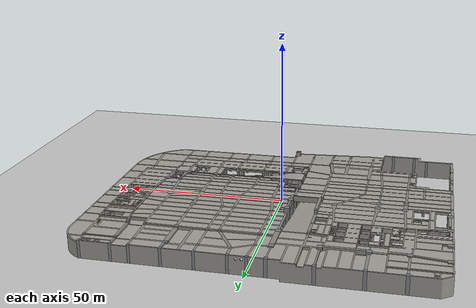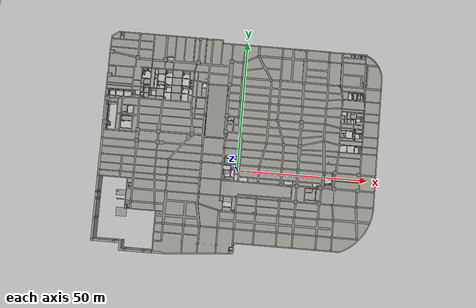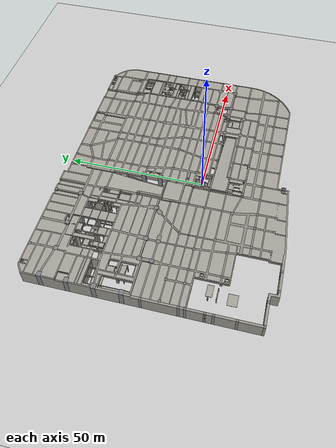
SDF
<?xml version='1.0' encoding='utf-8'?>
<sdf version="1.6">
  <world name="x920_b1_structure">
    <!-- Beam/column/wall/slab meshes extracted from the supplied S_B1 RVT. See meshes/b1_structure/source_report.json. -->
    <physics name="default_physics" type="ode">
      <max_step_size>0.001</max_step_size>
      <real_time_update_rate>1000</real_time_update_rate>
      <real_time_factor>1.0</real_time_factor>
    </physics>
    <gravity>0 0 -9.7946</gravity>
    <scene>
      <ambient>0.55 0.55 0.55 1</ambient>
      <shadows>true</shadows>
    </scene>
    <include>
      <uri>model://sun</uri>
    </include>
    <include>
      <uri>model://ground_plane</uri>
    </include>
    <model name="b1_beam">
      <static>true</static>
      <link name="structure">
        <collision name="beam_collision">
          <geometry>
            <mesh>
              <uri>file://meshes/b1_structure/beam.stl</uri>
              <scale>1 1 1</scale>
            </mesh>
          </geometry>
        </collision>
        <visual name="beam_visual">
          <geometry>
            <mesh>
              <uri>file://meshes/b1_structure/beam.stl</uri>
              <scale>1 1 1</scale>
            </mesh>
          </geometry>
          <material>
            <ambient>.55 .54 .51 1</ambient>
            <diffuse>.55 .54 .51 1</diffuse>
          </material>
        </visual>
      </link>
    </model>
    <model name="b1_column">
      <static>true</static>
      <link name="structure">
        <collision name="column_collision">
          <geometry>
            <mesh>
              <uri>file://meshes/b1_structure/column.stl</uri>
              <scale>1 1 1</scale>
            </mesh>
          </geometry>
        </collision>
        <visual name="column_visual">
          <geometry>
            <mesh>
              <uri>file://meshes/b1_structure/column.stl</uri>
              <scale>1 1 1</scale>
            </mesh>
          </geometry>
          <material>
            <ambient>.50 .51 .52 1</ambient>
            <diffuse>.50 .51 .52 1</diffuse>
          </material>
        </visual>
      </link>
    </model>
    <model name="b1_wall">
      <static>true</static>
      <link name="structure">
        <collision name="wall_collision">
          <geometry>
            <mesh>
              <uri>file://meshes/b1_structure/wall.stl</uri>
              <scale>1 1 1</scale>
            </mesh>
          </geometry>
        </collision>
        <visual name="wall_visual">
          <geometry>
            <mesh>
              <uri>file://meshes/b1_structure/wall.stl</uri>
              <scale>1 1 1</scale>
            </mesh>
          </geometry>
          <material>
            <ambient>.60 .59 .56 1</ambient>
            <diffuse>.60 .59 .56 1</diffuse>
          </material>
        </visual>
      </link>
    </model>
    <model name="b1_slab">
      <static>true</static>
      <link name="structure">
        <collision name="slab_collision">
          <geometry>
            <mesh>
              <uri>file://meshes/b1_structure/slab.stl</uri>
              <scale>1 1 1</scale>
            </mesh>
          </geometry>
        </collision>
        <visual name="slab_visual">
          <geometry>
            <mesh>
              <uri>file://meshes/b1_structure/slab.stl</uri>
              <scale>1 1 1</scale>
            </mesh>
          </geometry>
          <material>
            <ambient>.65 .64 .61 1</ambient>
            <diffuse>.65 .64 .61 1</diffuse>
          </material>
        </visual>
      </link>
    </model>
  </world>
</sdf>
